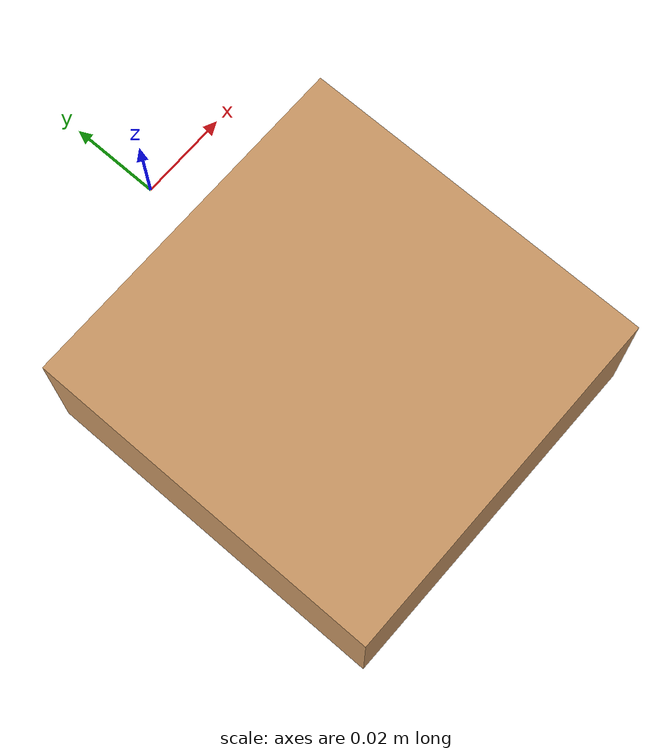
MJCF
<?xml version='1.0' encoding='utf-8'?>
<mujoco model="smplx_right_palm_wrist">
  <compiler coordinate="local" />
  <worldbody>
    <light pos="0 0 2" dir="0 0 -1" diffuse="1 1 1" specular="0.1 0.1 0.1" directional="true" />
    <body name="R_Wrist_Base" pos="0 0 0">
      <joint name="floating_base_joint" type="free" limited="false" actuatorfrclimited="false" />
      <body name="R_Wrist" pos="0 0 0" quat="1 0 0 0">
        <joint name="R_Wrist_x" type="hinge" pos="0 0 0" axis="1 0 0" stiffness="300" damping="30" armature="0.02" range="-180.0000 180.0000" limited="true" />
        <joint name="R_Wrist_y" type="hinge" pos="0 0 0" axis="0 1 0" stiffness="300" damping="30" armature="0.02" range="-180.0000 180.0000" limited="true" />
        <joint name="R_Wrist_z" type="hinge" pos="0 0 0" axis="0 0 1" stiffness="300" damping="30" armature="0.02" range="-180.0000 180.0000" limited="true" />
        <geom type="box" density="1230.823712" pos="-0.0029 -0.0537 -0.0044" size="0.04 0.0402 0.0159" quat="1.0000 0.0000 0.0000 0.0000" conaffinity="1" condim="3" contype="7" margin="0.001" rgba="0.8 0.6 .4 1" />
      </body>
    </body>
  </worldbody>
  <actuator>
    <motor name="R_Wrist_x" joint="R_Wrist_x" gear="500" />
    <motor name="R_Wrist_y" joint="R_Wrist_y" gear="500" />
    <motor name="R_Wrist_z" joint="R_Wrist_z" gear="500" />
  </actuator>
  <contact />
  <sensor />
  <size njmax="64" nconmax="64" />
</mujoco>
